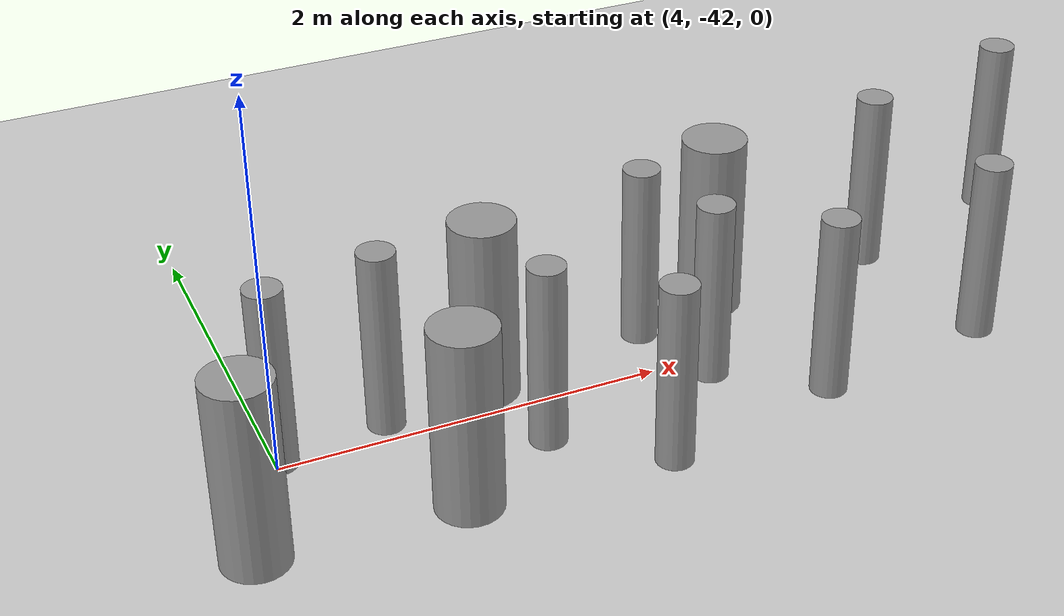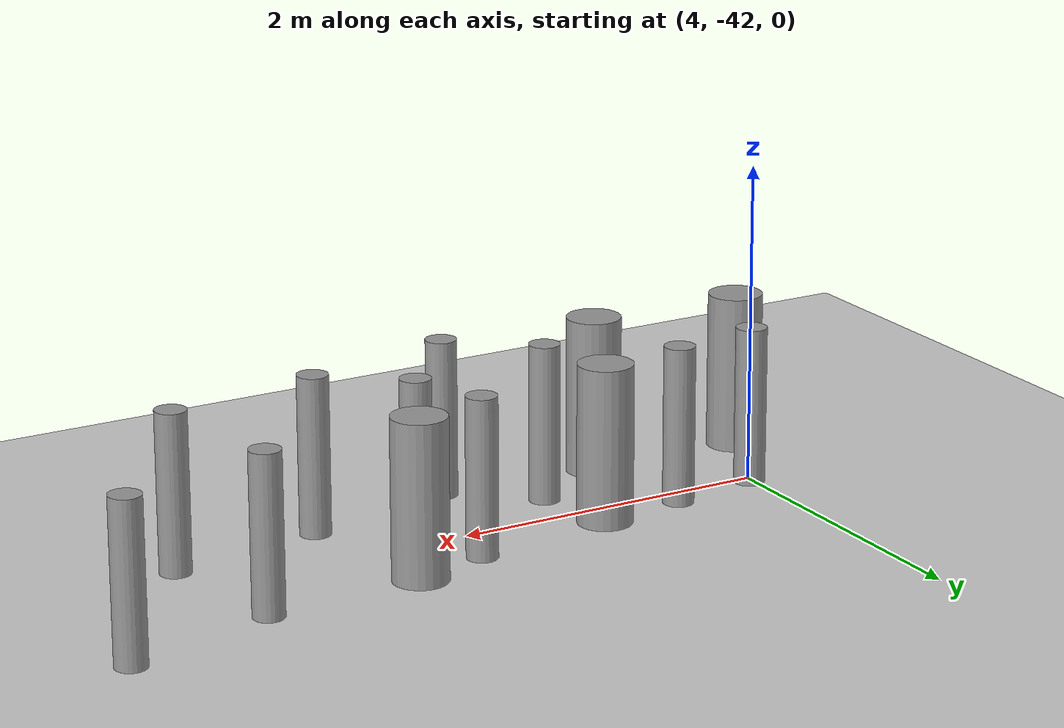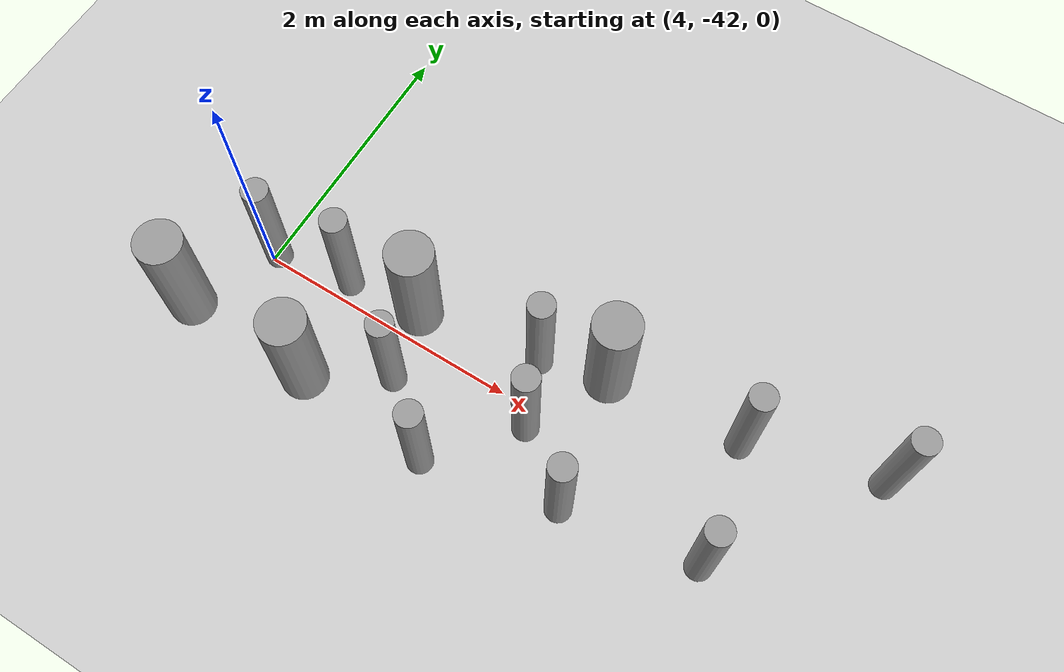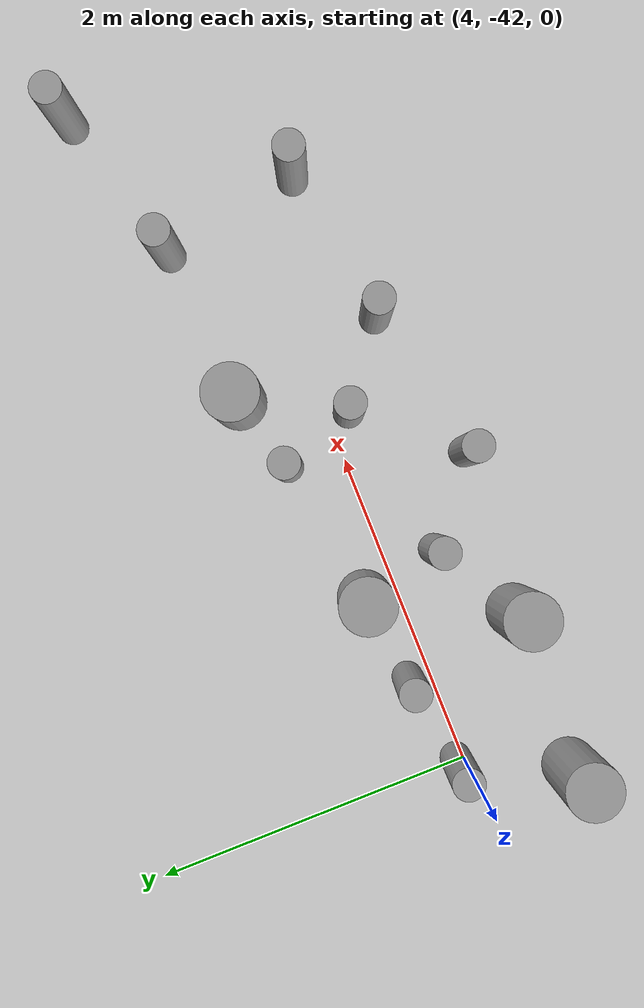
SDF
<sdf version="1.6">
 <world name="default">
  <model name="ground_plane">
   <static>1</static>
   <link name="link">
    <collision name="collision">
     <geometry><plane><normal>0 0 1</normal><size>100 100</size></plane></geometry>
     <surface><friction><ode><mu>100</mu><mu2>50</mu2></ode></friction></surface>
    </collision>
    <visual name="visual">
     <cast_shadows>0</cast_shadows>
     <geometry><plane><normal>0 0 1</normal><size>100 100</size></plane></geometry>
     <material>
      <script><uri>file://media/materials/scripts/gazebo.material</uri><name>Gazebo/Grey</name></script>
     </material>
    </visual>
   </link>
  </model>
  <model name="cyl_wall_clone_clone_1_clone_1_clone_clone_1_clone_1">
   <link name="link_0">
    <pose>-2.73893 -0.366465 0 0 -0 0</pose>
    <inertial>
     <mass>0.0374993</mass>
     <inertia>
      <ixx>0.00321281</ixx>
      <ixy>0</ixy>
      <ixz>0</ixz>
      <iyy>0.00321281</iyy>
      <iyz>0</iyz>
      <izz>0.000175774</izz>
     </inertia>
    </inertial>
    <visual name="visual">
     <geometry><cylinder><radius>0.0968661</radius><length>1</length></cylinder></geometry>
     <material>
      <lighting>1</lighting>
      <script><uri>file://media/materials/scripts/gazebo.material</uri><name>Gazebo/Grey</name></script>
      <ambient>0.3 0.3 0.3 1</ambient>
      <diffuse>0.7 0.7 0.7 1</diffuse>
      <specular>0.01 0.01 0.01 1</specular>
      <emissive>0 0 0 1</emissive>
     </material>
    </visual>
    <collision name="collision">
     <geometry><cylinder><radius>0.096866</radius><length>1</length></cylinder></geometry>
     <surface>
      <friction>
       <ode><mu>1</mu><mu2>1</mu2><fdir1>0 0 0</fdir1><slip1>0</slip1><slip2>0</slip2></ode>
       <torsional>
        <coefficient>1</coefficient>
        <patch_radius>0</patch_radius>
        <surface_radius>0</surface_radius>
        <use_patch_radius>1</use_patch_radius>
        <ode><slip>0</slip></ode>
       </torsional>
      </friction>
      <bounce><restitution_coefficient>0</restitution_coefficient><threshold>1e+06</threshold></bounce>
      <contact>
       <collide_without_contact>0</collide_without_contact>
       <collide_without_contact_bitmask>1</collide_without_contact_bitmask>
       <collide_bitmask>1</collide_bitmask>
       <ode>
        <soft_cfm>0</soft_cfm>
        <soft_erp>0.2</soft_erp>
        <kp>1e+13</kp>
        <kd>1</kd>
        <max_vel>0.01</max_vel>
        <min_depth>0</min_depth>
       </ode>
       <bullet>
        <split_impulse>1</split_impulse>
        <split_impulse_penetration_threshold>-0.01</split_impulse_penetration_threshold>
        <soft_cfm>0</soft_cfm>
        <soft_erp>0.2</soft_erp>
        <kp>1e+13</kp>
        <kd>1</kd>
       </bullet>
      </contact>
     </surface>
    </collision>
   </link>
   <link name="link_0_clone">
    <pose>-1.73893 0.61877 0 0 -0 0</pose>
    <inertial>
     <mass>0.0374993</mass>
     <inertia>
      <ixx>0.00321281</ixx>
      <ixy>0</ixy>
      <ixz>0</ixz>
      <iyy>0.00321281</iyy>
      <iyz>0</iyz>
      <izz>0.000175774</izz>
     </inertia>
    </inertial>
    <visual name="visual">
     <geometry><cylinder><radius>0.0968661</radius><length>1</length></cylinder></geometry>
     <material>
      <lighting>1</lighting>
      <script><uri>file://media/materials/scripts/gazebo.material</uri><name>Gazebo/Grey</name></script>
      <ambient>0.3 0.3 0.3 1</ambient>
      <diffuse>0.7 0.7 0.7 1</diffuse>
      <specular>0.01 0.01 0.01 1</specular>
      <emissive>0 0 0 1</emissive>
      <shader type="pixel"/>
     </material>
    </visual>
    <collision name="collision">
     <geometry><cylinder><radius>0.096866</radius><length>1</length></cylinder></geometry>
     <surface>
      <friction>
       <ode><mu>1</mu><mu2>1</mu2><fdir1>0 0 0</fdir1><slip1>0</slip1><slip2>0</slip2></ode>
       <torsional>
        <coefficient>1</coefficient>
        <patch_radius>0</patch_radius>
        <surface_radius>0</surface_radius>
        <use_patch_radius>1</use_patch_radius>
        <ode><slip>0</slip></ode>
       </torsional>
      </friction>
      <bounce><restitution_coefficient>0</restitution_coefficient><threshold>1e+06</threshold></bounce>
      <contact>
       <collide_without_contact>0</collide_without_contact>
       <collide_without_contact_bitmask>1</collide_without_contact_bitmask>
       <collide_bitmask>1</collide_bitmask>
       <ode>
        <soft_cfm>0</soft_cfm>
        <soft_erp>0.2</soft_erp>
        <kp>1e+13</kp>
        <kd>1</kd>
        <max_vel>0.01</max_vel>
        <min_depth>0</min_depth>
       </ode>
       <bullet>
        <split_impulse>1</split_impulse>
        <split_impulse_penetration_threshold>-0.01</split_impulse_penetration_threshold>
        <soft_cfm>0</soft_cfm>
        <soft_erp>0.2</soft_erp>
        <kp>1e+13</kp>
        <kd>1</kd>
       </bullet>
      </contact>
     </surface>
    </collision>
   </link>
   <link name="link_0_clone_clone">
    <pose>-0.327073 0.143919 0 0 -0 0</pose>
    <inertial>
     <mass>0.0374993</mass>
     <inertia>
      <ixx>0.00321281</ixx>
      <ixy>0</ixy>
      <ixz>0</ixz>
      <iyy>0.00321281</iyy>
      <iyz>0</iyz>
      <izz>0.000175774</izz>
     </inertia>
    </inertial>
    <visual name="visual">
     <geometry><cylinder><radius>0.0968661</radius><length>1</length></cylinder></geometry>
     <material>
      <lighting>1</lighting>
      <script><uri>file://media/materials/scripts/gazebo.material</uri><name>Gazebo/Grey</name></script>
      <ambient>0.3 0.3 0.3 1</ambient>
      <diffuse>0.7 0.7 0.7 1</diffuse>
      <specular>0.01 0.01 0.01 1</specular>
      <emissive>0 0 0 1</emissive>
      <shader type="pixel"/>
     </material>
    </visual>
    <collision name="collision">
     <geometry><cylinder><radius>0.096866</radius><length>1</length></cylinder></geometry>
     <surface>
      <friction>
       <ode><mu>1</mu><mu2>1</mu2><fdir1>0 0 0</fdir1><slip1>0</slip1><slip2>0</slip2></ode>
       <torsional>
        <coefficient>1</coefficient>
        <patch_radius>0</patch_radius>
        <surface_radius>0</surface_radius>
        <use_patch_radius>1</use_patch_radius>
        <ode><slip>0</slip></ode>
       </torsional>
      </friction>
      <bounce><restitution_coefficient>0</restitution_coefficient><threshold>1e+06</threshold></bounce>
      <contact>
       <collide_without_contact>0</collide_without_contact>
       <collide_without_contact_bitmask>1</collide_without_contact_bitmask>
       <collide_bitmask>1</collide_bitmask>
       <ode>
        <soft_cfm>0</soft_cfm>
        <soft_erp>0.2</soft_erp>
        <kp>1e+13</kp>
        <kd>1</kd>
        <max_vel>0.01</max_vel>
        <min_depth>0</min_depth>
       </ode>
       <bullet>
        <split_impulse>1</split_impulse>
        <split_impulse_penetration_threshold>-0.01</split_impulse_penetration_threshold>
        <soft_cfm>0</soft_cfm>
        <soft_erp>0.2</soft_erp>
        <kp>1e+13</kp>
        <kd>1</kd>
       </bullet>
      </contact>
     </surface>
    </collision>
   </link>
   <link name="link_0_clone_clone_0">
    <pose>1.26107 -0.419359 0 0 -0 0</pose>
    <inertial>
     <mass>0.0374993</mass>
     <inertia>
      <ixx>0.00321281</ixx>
      <ixy>0</ixy>
      <ixz>0</ixz>
      <iyy>0.00321281</iyy>
      <iyz>0</iyz>
      <izz>0.000175774</izz>
     </inertia>
    </inertial>
    <visual name="visual">
     <geometry><cylinder><radius>0.0968661</radius><length>1</length></cylinder></geometry>
     <material>
      <lighting>1</lighting>
      <script><uri>file://media/materials/scripts/gazebo.material</uri><name>Gazebo/Grey</name></script>
      <ambient>0.3 0.3 0.3 1</ambient>
      <diffuse>0.7 0.7 0.7 1</diffuse>
      <specular>0.01 0.01 0.01 1</specular>
      <emissive>0 0 0 1</emissive>
      <shader type="pixel"/>
     </material>
    </visual>
    <collision name="collision">
     <geometry><cylinder><radius>0.096866</radius><length>1</length></cylinder></geometry>
     <surface>
      <friction>
       <ode><mu>1</mu><mu2>1</mu2><fdir1>0 0 0</fdir1><slip1>0</slip1><slip2>0</slip2></ode>
       <torsional>
        <coefficient>1</coefficient>
        <patch_radius>0</patch_radius>
        <surface_radius>0</surface_radius>
        <use_patch_radius>1</use_patch_radius>
        <ode><slip>0</slip></ode>
       </torsional>
      </friction>
      <bounce><restitution_coefficient>0</restitution_coefficient><threshold>1e+06</threshold></bounce>
      <contact>
       <collide_without_contact>0</collide_without_contact>
       <collide_without_contact_bitmask>1</collide_without_contact_bitmask>
       <collide_bitmask>1</collide_bitmask>
       <ode>
        <soft_cfm>0</soft_cfm>
        <soft_erp>0.2</soft_erp>
        <kp>1e+13</kp>
        <kd>1</kd>
        <max_vel>0.01</max_vel>
        <min_depth>0</min_depth>
       </ode>
       <bullet>
        <split_impulse>1</split_impulse>
        <split_impulse_penetration_threshold>-0.01</split_impulse_penetration_threshold>
        <soft_cfm>0</soft_cfm>
        <soft_erp>0.2</soft_erp>
        <kp>1e+13</kp>
        <kd>1</kd>
       </bullet>
      </contact>
     </surface>
    </collision>
   </link>
   <link name="link_0_clone_clone_1">
    <pose>-1.73893 -0.277168 0 0 -0 0</pose>
    <inertial>
     <mass>0.0374993</mass>
     <inertia>
      <ixx>0.00321281</ixx>
      <ixy>0</ixy>
      <ixz>0</ixz>
      <iyy>0.00321281</iyy>
      <iyz>0</iyz>
      <izz>0.000175774</izz>
     </inertia>
    </inertial>
    <visual name="visual">
     <geometry><cylinder><radius>0.0968661</radius><length>1</length></cylinder></geometry>
     <material>
      <lighting>1</lighting>
      <script><uri>file://media/materials/scripts/gazebo.material</uri><name>Gazebo/Grey</name></script>
      <ambient>0.3 0.3 0.3 1</ambient>
      <diffuse>0.7 0.7 0.7 1</diffuse>
      <specular>0.01 0.01 0.01 1</specular>
      <emissive>0 0 0 1</emissive>
      <shader type="pixel"/>
     </material>
    </visual>
    <collision name="collision">
     <geometry><cylinder><radius>0.096866</radius><length>1</length></cylinder></geometry>
     <surface>
      <friction>
       <ode><mu>1</mu><mu2>1</mu2><fdir1>0 0 0</fdir1><slip1>0</slip1><slip2>0</slip2></ode>
       <torsional>
        <coefficient>1</coefficient>
        <patch_radius>0</patch_radius>
        <surface_radius>0</surface_radius>
        <use_patch_radius>1</use_patch_radius>
        <ode><slip>0</slip></ode>
       </torsional>
      </friction>
      <bounce><restitution_coefficient>0</restitution_coefficient><threshold>1e+06</threshold></bounce>
      <contact>
       <collide_without_contact>0</collide_without_contact>
       <collide_without_contact_bitmask>1</collide_without_contact_bitmask>
       <collide_bitmask>1</collide_bitmask>
       <ode>
        <soft_cfm>0</soft_cfm>
        <soft_erp>0.2</soft_erp>
        <kp>1e+13</kp>
        <kd>1</kd>
        <max_vel>0.01</max_vel>
        <min_depth>0</min_depth>
       </ode>
       <bullet>
        <split_impulse>1</split_impulse>
        <split_impulse_penetration_threshold>-0.01</split_impulse_penetration_threshold>
        <soft_cfm>0</soft_cfm>
        <soft_erp>0.2</soft_erp>
        <kp>1e+13</kp>
        <kd>1</kd>
       </bullet>
      </contact>
     </surface>
    </collision>
   </link>
   <link name="link_0_clone_clone_2">
    <pose>-0.738934 0.593961 0 0 -0 0</pose>
    <inertial>
     <mass>0.0374993</mass>
     <inertia>
      <ixx>0.00321281</ixx>
      <ixy>0</ixy>
      <ixz>0</ixz>
      <iyy>0.00321281</iyy>
      <iyz>0</iyz>
      <izz>0.000175774</izz>
     </inertia>
    </inertial>
    <visual name="visual">
     <geometry><cylinder><radius>0.0968661</radius><length>1</length></cylinder></geometry>
     <material>
      <lighting>1</lighting>
      <script><uri>file://media/materials/scripts/gazebo.material</uri><name>Gazebo/Grey</name></script>
      <ambient>0.3 0.3 0.3 1</ambient>
      <diffuse>0.7 0.7 0.7 1</diffuse>
      <specular>0.01 0.01 0.01 1</specular>
      <emissive>0 0 0 1</emissive>
      <shader type="pixel"/>
     </material>
    </visual>
    <collision name="collision">
     <geometry><cylinder><radius>0.096866</radius><length>1</length></cylinder></geometry>
     <surface>
      <friction>
       <ode><mu>1</mu><mu2>1</mu2><fdir1>0 0 0</fdir1><slip1>0</slip1><slip2>0</slip2></ode>
       <torsional>
        <coefficient>1</coefficient>
        <patch_radius>0</patch_radius>
        <surface_radius>0</surface_radius>
        <use_patch_radius>1</use_patch_radius>
        <ode><slip>0</slip></ode>
       </torsional>
      </friction>
      <bounce><restitution_coefficient>0</restitution_coefficient><threshold>1e+06</threshold></bounce>
      <contact>
       <collide_without_contact>0</collide_without_contact>
       <collide_without_contact_bitmask>1</collide_without_contact_bitmask>
       <collide_bitmask>1</collide_bitmask>
       <ode>
        <soft_cfm>0</soft_cfm>
        <soft_erp>0.2</soft_erp>
        <kp>1e+13</kp>
        <kd>1</kd>
        <max_vel>0.01</max_vel>
        <min_depth>0</min_depth>
       </ode>
       <bullet>
        <split_impulse>1</split_impulse>
        <split_impulse_penetration_threshold>-0.01</split_impulse_penetration_threshold>
        <soft_cfm>0</soft_cfm>
        <soft_erp>0.2</soft_erp>
        <kp>1e+13</kp>
        <kd>1</kd>
       </bullet>
      </contact>
     </surface>
    </collision>
   </link>
   <link name="link_0_clone_clone_3">
    <pose>0.261066 0.624849 0 0 -0 0</pose>
    <inertial>
     <mass>0.0374993</mass>
     <inertia>
      <ixx>0.00321281</ixx>
      <ixy>0</ixy>
      <ixz>0</ixz>
      <iyy>0.00321281</iyy>
      <iyz>0</iyz>
      <izz>0.000175774</izz>
     </inertia>
    </inertial>
    <visual name="visual">
     <geometry><cylinder><radius>0.0968661</radius><length>1</length></cylinder></geometry>
     <material>
      <lighting>1</lighting>
      <script><uri>file://media/materials/scripts/gazebo.material</uri><name>Gazebo/Grey</name></script>
      <ambient>0.3 0.3 0.3 1</ambient>
      <diffuse>0.7 0.7 0.7 1</diffuse>
      <specular>0.01 0.01 0.01 1</specular>
      <emissive>0 0 0 1</emissive>
      <shader type="pixel"/>
     </material>
    </visual>
    <collision name="collision">
     <geometry><cylinder><radius>0.096866</radius><length>1</length></cylinder></geometry>
     <surface>
      <friction>
       <ode><mu>1</mu><mu2>1</mu2><fdir1>0 0 0</fdir1><slip1>0</slip1><slip2>0</slip2></ode>
       <torsional>
        <coefficient>1</coefficient>
        <patch_radius>0</patch_radius>
        <surface_radius>0</surface_radius>
        <use_patch_radius>1</use_patch_radius>
        <ode><slip>0</slip></ode>
       </torsional>
      </friction>
      <bounce><restitution_coefficient>0</restitution_coefficient><threshold>1e+06</threshold></bounce>
      <contact>
       <collide_without_contact>0</collide_without_contact>
       <collide_without_contact_bitmask>1</collide_without_contact_bitmask>
       <collide_bitmask>1</collide_bitmask>
       <ode>
        <soft_cfm>0</soft_cfm>
        <soft_erp>0.2</soft_erp>
        <kp>1e+13</kp>
        <kd>1</kd>
        <max_vel>0.01</max_vel>
        <min_depth>0</min_depth>
       </ode>
       <bullet>
        <split_impulse>1</split_impulse>
        <split_impulse_penetration_threshold>-0.01</split_impulse_penetration_threshold>
        <soft_cfm>0</soft_cfm>
        <soft_erp>0.2</soft_erp>
        <kp>1e+13</kp>
        <kd>1</kd>
       </bullet>
      </contact>
     </surface>
    </collision>
   </link>
   <link name="link_0_clone_clone_4">
    <pose>-0.239049 -0.353105 0 0 -0 0</pose>
    <inertial>
     <mass>0.0374993</mass>
     <inertia>
      <ixx>0.00321281</ixx>
      <ixy>0</ixy>
      <ixz>0</ixz>
      <iyy>0.00321281</iyy>
      <iyz>0</iyz>
      <izz>0.000175774</izz>
     </inertia>
    </inertial>
    <visual name="visual">
     <geometry><cylinder><radius>0.0968661</radius><length>1</length></cylinder></geometry>
     <material>
      <lighting>1</lighting>
      <script><uri>file://media/materials/scripts/gazebo.material</uri><name>Gazebo/Grey</name></script>
      <ambient>0.3 0.3 0.3 1</ambient>
      <diffuse>0.7 0.7 0.7 1</diffuse>
      <specular>0.01 0.01 0.01 1</specular>
      <emissive>0 0 0 1</emissive>
      <shader type="pixel"/>
     </material>
    </visual>
    <collision name="collision">
     <geometry><cylinder><radius>0.096866</radius><length>1</length></cylinder></geometry>
     <surface>
      <friction>
       <ode><mu>1</mu><mu2>1</mu2><fdir1>0 0 0</fdir1><slip1>0</slip1><slip2>0</slip2></ode>
       <torsional>
        <coefficient>1</coefficient>
        <patch_radius>0</patch_radius>
        <surface_radius>0</surface_radius>
        <use_patch_radius>1</use_patch_radius>
        <ode><slip>0</slip></ode>
       </torsional>
      </friction>
      <bounce><restitution_coefficient>0</restitution_coefficient><threshold>1e+06</threshold></bounce>
      <contact>
       <collide_without_contact>0</collide_without_contact>
       <collide_without_contact_bitmask>1</collide_without_contact_bitmask>
       <collide_bitmask>1</collide_bitmask>
       <ode>
        <soft_cfm>0</soft_cfm>
        <soft_erp>0.2</soft_erp>
        <kp>1e+13</kp>
        <kd>1</kd>
        <max_vel>0.01</max_vel>
        <min_depth>0</min_depth>
       </ode>
       <bullet>
        <split_impulse>1</split_impulse>
        <split_impulse_penetration_threshold>-0.01</split_impulse_penetration_threshold>
        <soft_cfm>0</soft_cfm>
        <soft_erp>0.2</soft_erp>
        <kp>1e+13</kp>
        <kd>1</kd>
       </bullet>
      </contact>
     </surface>
    </collision>
   </link>
   <link name="link_0_clone_clone_5">
    <pose>0.672792 0.143919 0 0 -0 0</pose>
    <inertial>
     <mass>0.0374993</mass>
     <inertia>
      <ixx>0.00321281</ixx>
      <ixy>0</ixy>
      <ixz>0</ixz>
      <iyy>0.00321281</iyy>
      <iyz>0</iyz>
      <izz>0.000175774</izz>
     </inertia>
    </inertial>
    <visual name="visual">
     <geometry><cylinder><radius>0.0968661</radius><length>1</length></cylinder></geometry>
     <material>
      <lighting>1</lighting>
      <script><uri>file://media/materials/scripts/gazebo.material</uri><name>Gazebo/Grey</name></script>
      <ambient>0.3 0.3 0.3 1</ambient>
      <diffuse>0.7 0.7 0.7 1</diffuse>
      <specular>0.01 0.01 0.01 1</specular>
      <emissive>0 0 0 1</emissive>
      <shader type="pixel"/>
     </material>
    </visual>
    <collision name="collision">
     <geometry><cylinder><radius>0.096866</radius><length>1</length></cylinder></geometry>
     <surface>
      <friction>
       <ode><mu>1</mu><mu2>1</mu2><fdir1>0 0 0</fdir1><slip1>0</slip1><slip2>0</slip2></ode>
       <torsional>
        <coefficient>1</coefficient>
        <patch_radius>0</patch_radius>
        <surface_radius>0</surface_radius>
        <use_patch_radius>1</use_patch_radius>
        <ode><slip>0</slip></ode>
       </torsional>
      </friction>
      <bounce><restitution_coefficient>0</restitution_coefficient><threshold>1e+06</threshold></bounce>
      <contact>
       <collide_without_contact>0</collide_without_contact>
       <collide_without_contact_bitmask>1</collide_without_contact_bitmask>
       <collide_bitmask>1</collide_bitmask>
       <ode>
        <soft_cfm>0</soft_cfm>
        <soft_erp>0.2</soft_erp>
        <kp>1e+13</kp>
        <kd>1</kd>
        <max_vel>0.01</max_vel>
        <min_depth>0</min_depth>
       </ode>
       <bullet>
        <split_impulse>1</split_impulse>
        <split_impulse_penetration_threshold>-0.01</split_impulse_penetration_threshold>
        <soft_cfm>0</soft_cfm>
        <soft_erp>0.2</soft_erp>
        <kp>1e+13</kp>
        <kd>1</kd>
       </bullet>
      </contact>
     </surface>
    </collision>
   </link>
   <link name="link_0_clone_clone_6">
    <pose>1.84596 -0.433423 0 0 -0 0</pose>
    <inertial>
     <mass>0.0374993</mass>
     <inertia>
      <ixx>0.00321281</ixx>
      <ixy>0</ixy>
      <ixz>0</ixz>
      <iyy>0.00321281</iyy>
      <iyz>0</iyz>
      <izz>0.000175774</izz>
     </inertia>
    </inertial>
    <visual name="visual">
     <geometry><cylinder><radius>0.0968661</radius><length>1</length></cylinder></geometry>
     <material>
      <lighting>1</lighting>
      <script><uri>file://media/materials/scripts/gazebo.material</uri><name>Gazebo/Grey</name></script>
      <ambient>0.3 0.3 0.3 1</ambient>
      <diffuse>0.7 0.7 0.7 1</diffuse>
      <specular>0.01 0.01 0.01 1</specular>
      <emissive>0 0 0 1</emissive>
      <shader type="pixel"/>
     </material>
    </visual>
    <collision name="collision">
     <geometry><cylinder><radius>0.096866</radius><length>1</length></cylinder></geometry>
     <surface>
      <friction>
       <ode><mu>1</mu><mu2>1</mu2><fdir1>0 0 0</fdir1><slip1>0</slip1><slip2>0</slip2></ode>
       <torsional>
        <coefficient>1</coefficient>
        <patch_radius>0</patch_radius>
        <surface_radius>0</surface_radius>
        <use_patch_radius>1</use_patch_radius>
        <ode><slip>0</slip></ode>
       </torsional>
      </friction>
      <bounce><restitution_coefficient>0</restitution_coefficient><threshold>1e+06</threshold></bounce>
      <contact>
       <collide_without_contact>0</collide_without_contact>
       <collide_without_contact_bitmask>1</collide_without_contact_bitmask>
       <collide_bitmask>1</collide_bitmask>
       <ode>
        <soft_cfm>0</soft_cfm>
        <soft_erp>0.2</soft_erp>
        <kp>1e+13</kp>
        <kd>1</kd>
        <max_vel>0.01</max_vel>
        <min_depth>0</min_depth>
       </ode>
       <bullet>
        <split_impulse>1</split_impulse>
        <split_impulse_penetration_threshold>-0.01</split_impulse_penetration_threshold>
        <soft_cfm>0</soft_cfm>
        <soft_erp>0.2</soft_erp>
        <kp>1e+13</kp>
        <kd>1</kd>
       </bullet>
      </contact>
     </surface>
    </collision>
   </link>
   <link name="link_1">
    <pose>-0.738934 -0.397931 0 0 -0 0</pose>
    <inertial>
     <mass>0.117398</mass>
     <inertia>
      <ixx>0.0106445</ixx>
      <ixy>0</ixy>
      <ixz>0</ixz>
      <iyy>0.0106445</iyy>
      <iyz>0</iyz>
      <izz>0.00172278</izz>
     </inertia>
    </inertial>
    <visual name="visual">
     <geometry><cylinder><radius>0.171317</radius><length>1</length></cylinder></geometry>
     <material>
      <lighting>1</lighting>
      <script><uri>file://media/materials/scripts/gazebo.material</uri><name>Gazebo/Grey</name></script>
      <ambient>0.3 0.3 0.3 1</ambient>
      <diffuse>0.7 0.7 0.7 1</diffuse>
      <specular>0.01 0.01 0.01 1</specular>
      <emissive>0 0 0 1</emissive>
     </material>
    </visual>
    <collision name="collision">
     <geometry><cylinder><radius>0.171317</radius><length>1</length></cylinder></geometry>
     <surface>
      <friction>
       <ode><mu>1</mu><mu2>1</mu2><fdir1>0 0 0</fdir1><slip1>0</slip1><slip2>0</slip2></ode>
       <torsional>
        <coefficient>1</coefficient>
        <patch_radius>0</patch_radius>
        <surface_radius>0</surface_radius>
        <use_patch_radius>1</use_patch_radius>
        <ode><slip>0</slip></ode>
       </torsional>
      </friction>
      <bounce><restitution_coefficient>0</restitution_coefficient><threshold>1e+06</threshold></bounce>
      <contact>
       <collide_without_contact>0</collide_without_contact>
       <collide_without_contact_bitmask>1</collide_without_contact_bitmask>
       <collide_bitmask>1</collide_bitmask>
       <ode>
        <soft_cfm>0</soft_cfm>
        <soft_erp>0.2</soft_erp>
        <kp>1e+13</kp>
        <kd>1</kd>
        <max_vel>0.01</max_vel>
        <min_depth>0</min_depth>
       </ode>
       <bullet>
        <split_impulse>1</split_impulse>
        <split_impulse_penetration_threshold>-0.01</split_impulse_penetration_threshold>
        <soft_cfm>0</soft_cfm>
        <soft_erp>0.2</soft_erp>
        <kp>1e+13</kp>
        <kd>1</kd>
       </bullet>
      </contact>
     </surface>
    </collision>
   </link>
   <link name="link_1_clone">
    <pose>0.697784 -0.380861 0 0 -0 0</pose>
    <inertial>
     <mass>0.117398</mass>
     <inertia>
      <ixx>0.0106445</ixx>
      <ixy>0</ixy>
      <ixz>0</ixz>
      <iyy>0.0106445</iyy>
      <iyz>0</iyz>
      <izz>0.00172278</izz>
     </inertia>
    </inertial>
    <visual name="visual">
     <geometry><cylinder><radius>0.171317</radius><length>1</length></cylinder></geometry>
     <material>
      <lighting>1</lighting>
      <script><uri>file://media/materials/scripts/gazebo.material</uri><name>Gazebo/Grey</name></script>
      <ambient>0.3 0.3 0.3 1</ambient>
      <diffuse>0.7 0.7 0.7 1</diffuse>
      <specular>0.01 0.01 0.01 1</specular>
      <emissive>0 0 0 1</emissive>
      <shader type="pixel"/>
     </material>
    </visual>
    <collision name="collision">
     <geometry><cylinder><radius>0.171317</radius><length>1</length></cylinder></geometry>
     <surface>
      <friction>
       <ode><mu>1</mu><mu2>1</mu2><fdir1>0 0 0</fdir1><slip1>0</slip1><slip2>0</slip2></ode>
       <torsional>
        <coefficient>1</coefficient>
        <patch_radius>0</patch_radius>
        <surface_radius>0</surface_radius>
        <use_patch_radius>1</use_patch_radius>
        <ode><slip>0</slip></ode>
       </torsional>
      </friction>
      <bounce><restitution_coefficient>0</restitution_coefficient><threshold>1e+06</threshold></bounce>
      <contact>
       <collide_without_contact>0</collide_without_contact>
       <collide_without_contact_bitmask>1</collide_without_contact_bitmask>
       <collide_bitmask>1</collide_bitmask>
       <ode>
        <soft_cfm>0</soft_cfm>
        <soft_erp>0.2</soft_erp>
        <kp>1e+13</kp>
        <kd>1</kd>
        <max_vel>0.01</max_vel>
        <min_depth>0</min_depth>
       </ode>
       <bullet>
        <split_impulse>1</split_impulse>
        <split_impulse_penetration_threshold>-0.01</split_impulse_penetration_threshold>
        <soft_cfm>0</soft_cfm>
        <soft_erp>0.2</soft_erp>
        <kp>1e+13</kp>
        <kd>1</kd>
       </bullet>
      </contact>
     </surface>
    </collision>
   </link>
   <link name="link_1_clone_0">
    <pose>1.26107 0.358974 0 0 -0 0</pose>
    <inertial>
     <mass>0.117398</mass>
     <inertia>
      <ixx>0.0106445</ixx>
      <ixy>0</ixy>
      <ixz>0</ixz>
      <iyy>0.0106445</iyy>
      <iyz>0</iyz>
      <izz>0.00172278</izz>
     </inertia>
    </inertial>
    <visual name="visual">
     <geometry><cylinder><radius>0.171317</radius><length>1</length></cylinder></geometry>
     <material>
      <lighting>1</lighting>
      <script><uri>file://media/materials/scripts/gazebo.material</uri><name>Gazebo/Grey</name></script>
      <ambient>0.3 0.3 0.3 1</ambient>
      <diffuse>0.7 0.7 0.7 1</diffuse>
      <specular>0.01 0.01 0.01 1</specular>
      <emissive>0 0 0 1</emissive>
      <shader type="pixel"/>
     </material>
    </visual>
    <collision name="collision">
     <geometry><cylinder><radius>0.171317</radius><length>1</length></cylinder></geometry>
     <surface>
      <friction>
       <ode><mu>1</mu><mu2>1</mu2><fdir1>0 0 0</fdir1><slip1>0</slip1><slip2>0</slip2></ode>
       <torsional>
        <coefficient>1</coefficient>
        <patch_radius>0</patch_radius>
        <surface_radius>0</surface_radius>
        <use_patch_radius>1</use_patch_radius>
        <ode><slip>0</slip></ode>
       </torsional>
      </friction>
      <bounce><restitution_coefficient>0</restitution_coefficient><threshold>1e+06</threshold></bounce>
      <contact>
       <collide_without_contact>0</collide_without_contact>
       <collide_without_contact_bitmask>1</collide_without_contact_bitmask>
       <collide_bitmask>1</collide_bitmask>
       <ode>
        <soft_cfm>0</soft_cfm>
        <soft_erp>0.2</soft_erp>
        <kp>1e+13</kp>
        <kd>1</kd>
        <max_vel>0.01</max_vel>
        <min_depth>0</min_depth>
       </ode>
       <bullet>
        <split_impulse>1</split_impulse>
        <split_impulse_penetration_threshold>-0.01</split_impulse_penetration_threshold>
        <soft_cfm>0</soft_cfm>
        <soft_erp>0.2</soft_erp>
        <kp>1e+13</kp>
        <kd>1</kd>
       </bullet>
      </contact>
     </surface>
    </collision>
   </link>
   <link name="link_1_clone_1">
    <pose>2.26107 0.143919 0 0 -0 0</pose>
    <inertial>
     <mass>0.117398</mass>
     <inertia>
      <ixx>0.0106445</ixx>
      <ixy>0</ixy>
      <ixz>0</ixz>
      <iyy>0.0106445</iyy>
      <iyz>0</iyz>
      <izz>0.00172278</izz>
     </inertia>
    </inertial>
    <visual name="visual">
     <geometry><cylinder><radius>0.171317</radius><length>1</length></cylinder></geometry>
     <material>
      <lighting>1</lighting>
      <script><uri>file://media/materials/scripts/gazebo.material</uri><name>Gazebo/Grey</name></script>
      <ambient>0.3 0.3 0.3 1</ambient>
      <diffuse>0.7 0.7 0.7 1</diffuse>
      <specular>0.01 0.01 0.01 1</specular>
      <emissive>0 0 0 1</emissive>
      <shader type="pixel"/>
     </material>
    </visual>
    <collision name="collision">
     <geometry><cylinder><radius>0.171317</radius><length>1</length></cylinder></geometry>
     <surface>
      <friction>
       <ode><mu>1</mu><mu2>1</mu2><fdir1>0 0 0</fdir1><slip1>0</slip1><slip2>0</slip2></ode>
       <torsional>
        <coefficient>1</coefficient>
        <patch_radius>0</patch_radius>
        <surface_radius>0</surface_radius>
        <use_patch_radius>1</use_patch_radius>
        <ode><slip>0</slip></ode>
       </torsional>
      </friction>
      <bounce><restitution_coefficient>0</restitution_coefficient><threshold>1e+06</threshold></bounce>
      <contact>
       <collide_without_contact>0</collide_without_contact>
       <collide_without_contact_bitmask>1</collide_without_contact_bitmask>
       <collide_bitmask>1</collide_bitmask>
       <ode>
        <soft_cfm>0</soft_cfm>
        <soft_erp>0.2</soft_erp>
        <kp>1e+13</kp>
        <kd>1</kd>
        <max_vel>0.01</max_vel>
        <min_depth>0</min_depth>
       </ode>
       <bullet>
        <split_impulse>1</split_impulse>
        <split_impulse_penetration_threshold>-0.01</split_impulse_penetration_threshold>
        <soft_cfm>0</soft_cfm>
        <soft_erp>0.2</soft_erp>
        <kp>1e+13</kp>
        <kd>1</kd>
       </bullet>
      </contact>
     </surface>
    </collision>
   </link>
   <static>1</static>
   <pose>5.91629 -42.0471 0.5 0 0 -2.95907</pose>
  </model>
 </world>
</sdf>
